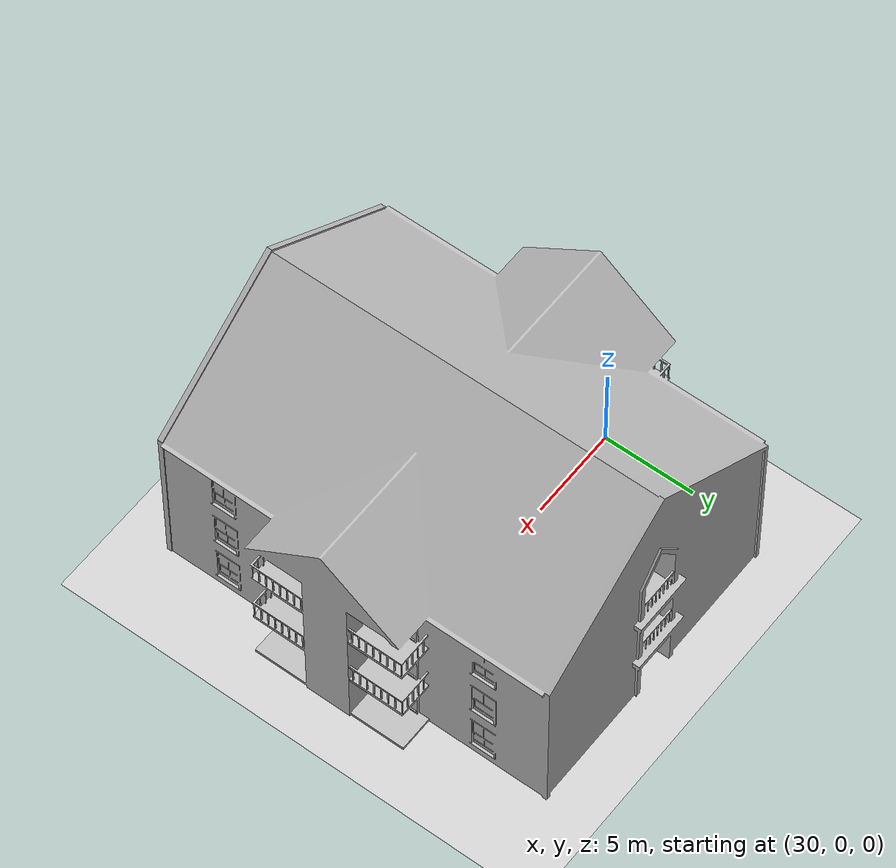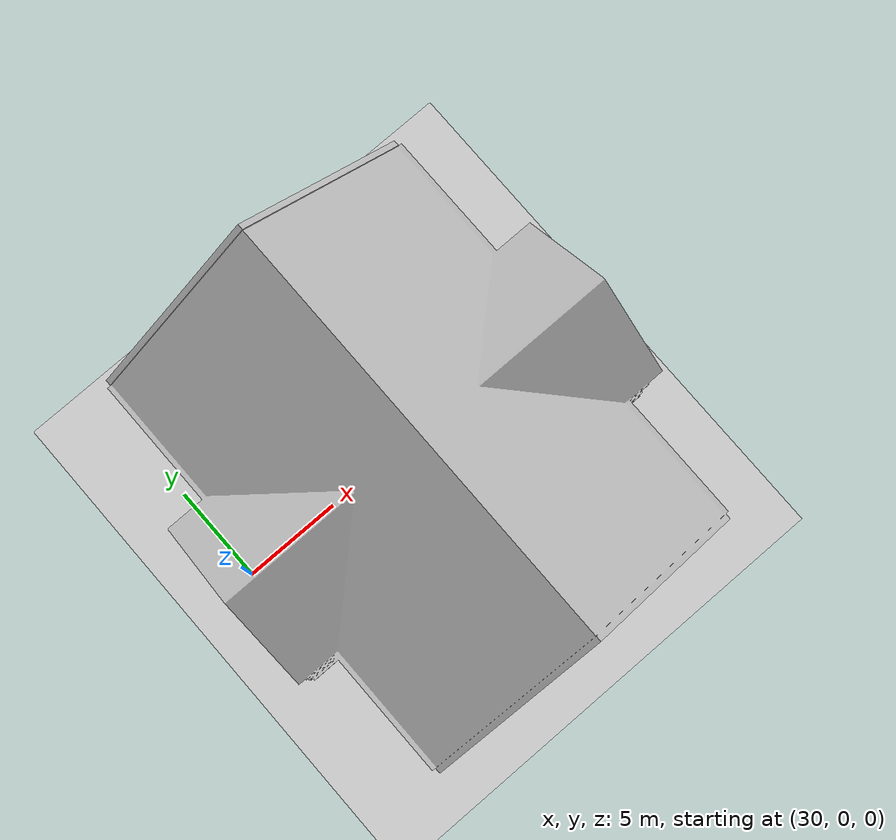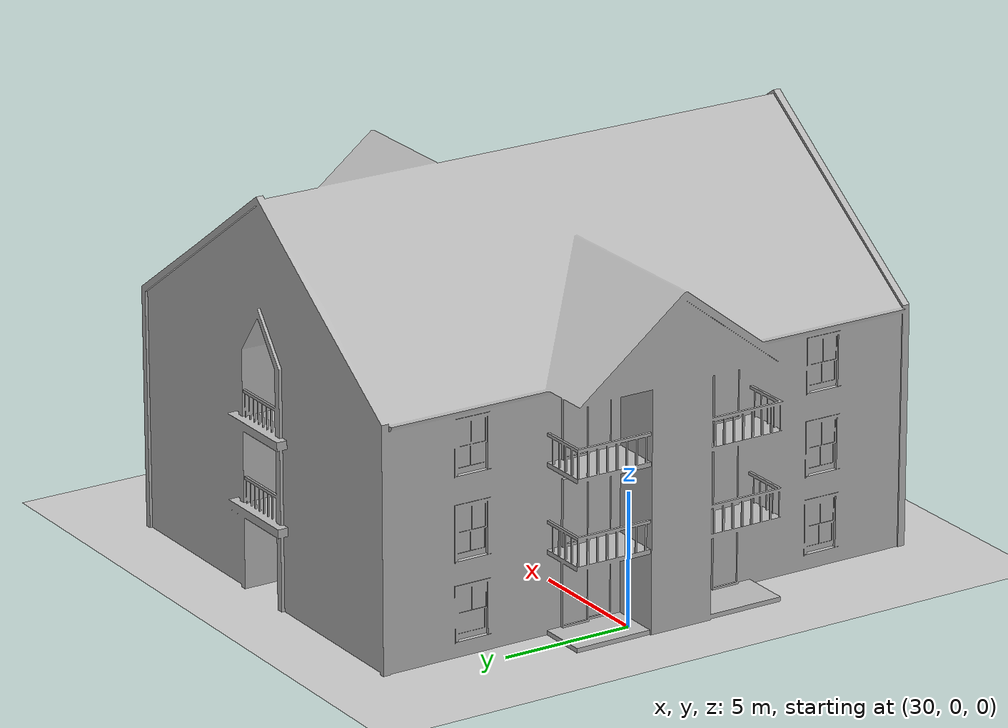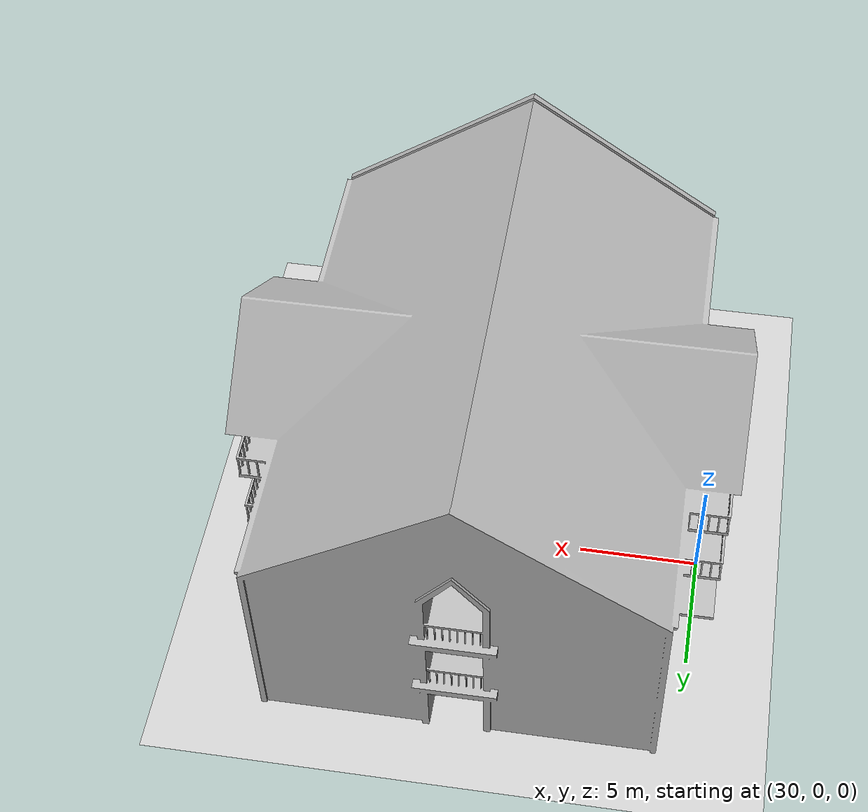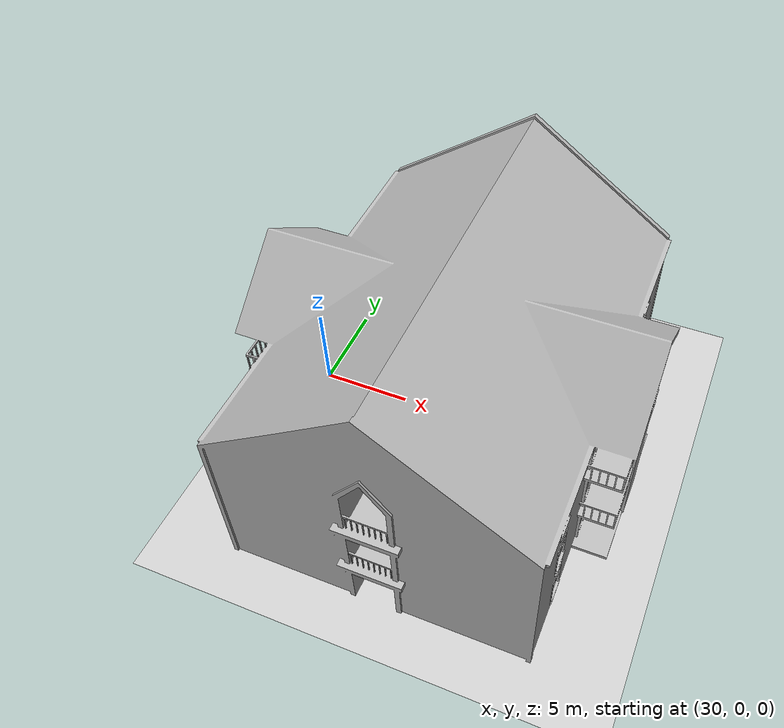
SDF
<sdf version="1.7">
 <world name="default">
  <model name="ground_plane">
   <static>1</static>
   <link name="link">
    <collision name="collision">
     <geometry><plane><normal>0 0 1</normal><size>1000 1000</size></plane></geometry>
     <surface><friction><ode><mu>100</mu><mu2>50</mu2></ode></friction></surface>
    </collision>
    <visual name="visual">
     <cast_shadows>0</cast_shadows>
     <geometry><plane><normal>0 0 1</normal><size>1000 1000</size></plane></geometry>
     <material>
      <script><uri>file://media/materials/scripts/gazebo.material</uri><name>Gazebo/Grey</name></script>
     </material>
    </visual>
   </link>
  </model>
  <model name="apartment">
   <static>1</static>
   <link name="link">
    <collision name="collision">
     <geometry><mesh><uri>model://apartment/meshes/apartment.dae</uri></mesh></geometry>
    </collision>
    <visual name="visual">
     <geometry><mesh><uri>model://apartment/meshes/apartment.dae</uri></mesh></geometry>
    </visual>
   </link>
   <pose>38.9425 -1.48846 0 0 -0 0</pose>
  </model>
 </world>
</sdf>
